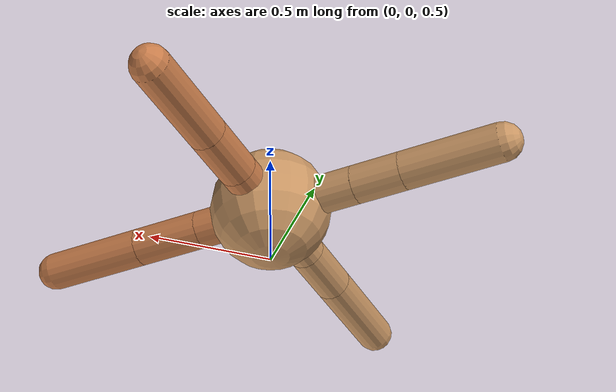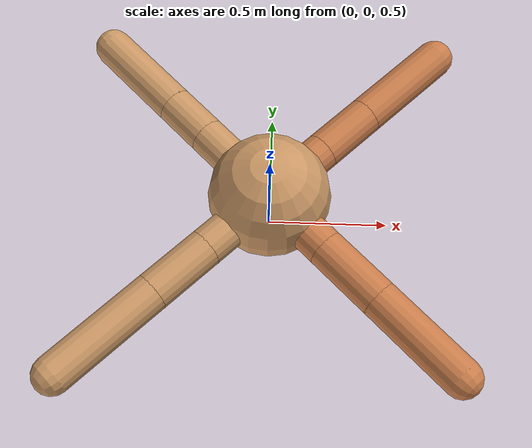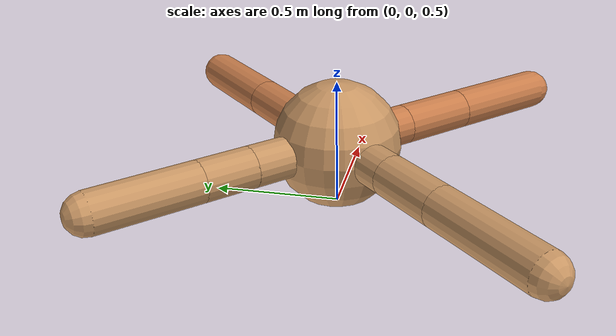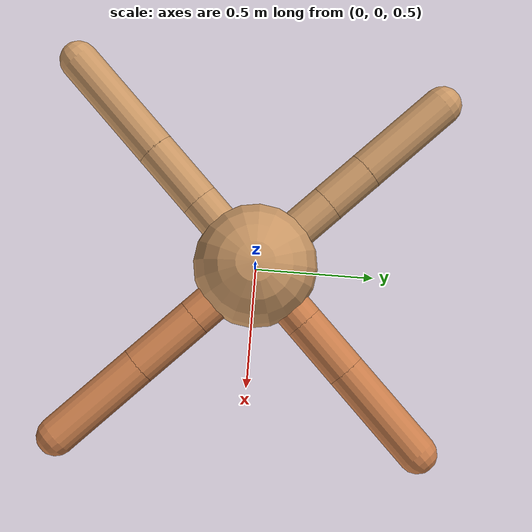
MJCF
<mujoco model="ant">
  <compiler angle="degree" coordinate="local" inertiafromgeom="true" />
  <option integrator="RK4" timestep="0.01" />
  <custom>
    <numeric data="0.0 0.0 0.55 1.0 0.0 0.0 0.0 0.0 1.0 0.0 -1.0 0.0 -1.0 0.0 1.0" name="init_qpos" />
  </custom>
  <default>
    <joint armature="1" damping="1" limited="true" />
    <geom conaffinity="0" condim="3" density="5.0" friction="1.5 0.1 0.1" margin="0.01" rgba="0.8 0.6 0.4 1" />
  </default>
  <worldbody>
    <body name="torso" pos="0 0 0.75">
      <geom name="torso_geom" pos="0 0 0" size="0.25" type="sphere" />

      <body name="front_left_leg" pos="0 0 0">
        <geom fromto="0.0 0.0 0.0 0.21169396745610355 0.21169396745610355 0.0" name="aux_1_geom" size="0.08" type="capsule" rgba=".8 .5 .3 1" />
        <body name="aux_1" pos="0.21169396745610355 0.21169396745610355 0.0">
          <joint axis="0 0 1" name="hip_1" pos="0.0 0.0 0.0" range="-40 40" type="hinge" />
          <geom fromto="0.0 0.0 0.0 0.1791525834999928 0.1791525834999928 0.0" name="left_leg_geom" size="0.08" type="capsule" rgba=".8 .5 .3 1" />
          <body pos="0.1791525834999928 0.1791525834999928 0.0" name="front_left_foot">
            <joint axis="-1 1 0" name="ankle_1" pos="0.0 0.0 0.0" range="30 100" type="hinge" />
            <geom fromto="0.0 0.0 0.0 0.3049653666372902 0.3049653666372902 0.0" name="left_ankle_geom" size="0.08" type="capsule" rgba=".8 .5 .3 1" />
          </body>
        </body>
      </body>
      <body name="front_right_leg" pos="0 0 0">
        <geom fromto="0.0 0.0 0.0 -0.2692419998368966 0.2692419998368966 0.0" name="aux_2_geom" size="0.08" type="capsule" />
        <body name="aux_2" pos="-0.2692419998368966 0.2692419998368966 0.0">
          <joint axis="0 0 1" name="hip_2" pos="0.0 0.0 0.0" range="-40 40" type="hinge" />
          <geom fromto="0.0 0.0 0.0 -0.14505030348266643 0.14505030348266643 0.0" name="right_leg_geom" size="0.08" type="capsule" />
          <body pos="-0.14505030348266643 0.14505030348266643 0.0" name="front_right_foot">
            <joint axis="1 1 0" name="ankle_2" pos="0.0 0.0 0.0" range="-100 -30" type="hinge" />
            <geom fromto="0.0 0.0 0.0 -0.29054913652519443 0.29054913652519443 0.0" name="right_ankle_geom" size="0.08" type="capsule" />
          </body>
        </body>
      </body>
      <body name="left_back_leg" pos="0 0 0">
        <geom fromto="0.0 0.0 0.0 -0.2431238755924765 -0.2431238755924765 0.0" name="aux_3_geom" size="0.08" type="capsule" />
        <body name="aux_3" pos="-0.2431238755924765 -0.2431238755924765 0.0">
          <joint axis="0 0 1" name="hip_3" pos="0.0 0.0 0.0" range="-40 40" type="hinge" />
          <geom fromto="0.0 0.0 0.0 -0.19406712083451474 -0.19406712083451474 0.0" name="back_leg_geom" size="0.08" type="capsule" />
          <body pos="-0.19406712083451474 -0.19406712083451474 0.0" name="left_back_foot">
            <joint axis="-1 1 0" name="ankle_3" pos="0.0 0.0 0.0" range="-100 -30" type="hinge" />
            <geom fromto="0.0 0.0 0.0 -0.34107213678628945 -0.34107213678628945 0.0" name="third_ankle_geom" size="0.08" type="capsule" />
          </body>
        </body>
      </body>
      <body name="right_back_leg" pos="0 0 0">
        <geom fromto="0.0 0.0 0.0 0.22736641266810206 -0.22736641266810206 0.0" name="aux_4_geom" size="0.08" type="capsule" rgba=".8 .5 .3 1" />
        <body name="aux_4" pos="0.22736641266810206 -0.22736641266810206 0.0">
          <joint axis="0 0 1" name="hip_4" pos="0.0 0.0 0.0" range="-40 40" type="hinge" />
          <geom fromto="0.0 0.0 0.0 0.20654459990779428 -0.20654459990779428 0.0" name="rightback_leg_geom" size="0.08" type="capsule" rgba=".8 .5 .3 1" />
          <body pos="0.20654459990779428 -0.20654459990779428 0.0" name="right_back_foot">
            <joint axis="1 1 0" name="ankle_4" pos="0.0 0.0 0.0" range="30 100" type="hinge" />
            <geom fromto="0.0 0.0 0.0 0.3014940629332646 -0.3014940629332646 0.0" name="fourth_ankle_geom" size="0.08" type="capsule" rgba=".8 .5 .3 1" />
          </body>
        </body>
      </body>
    </body>
  </worldbody>
  <actuator>
    <motor ctrllimited="true" ctrlrange="-1.0 1.0" joint="hip_4" gear="150" />
    <motor ctrllimited="true" ctrlrange="-1.0 1.0" joint="ankle_4" gear="150" />
    <motor ctrllimited="true" ctrlrange="-1.0 1.0" joint="hip_1" gear="150" />
    <motor ctrllimited="true" ctrlrange="-1.0 1.0" joint="ankle_1" gear="150" />
    <motor ctrllimited="true" ctrlrange="-1.0 1.0" joint="hip_2" gear="150" />
    <motor ctrllimited="true" ctrlrange="-1.0 1.0" joint="ankle_2" gear="150" />
    <motor ctrllimited="true" ctrlrange="-1.0 1.0" joint="hip_3" gear="150" />
    <motor ctrllimited="true" ctrlrange="-1.0 1.0" joint="ankle_3" gear="150" />
  </actuator>
</mujoco>
